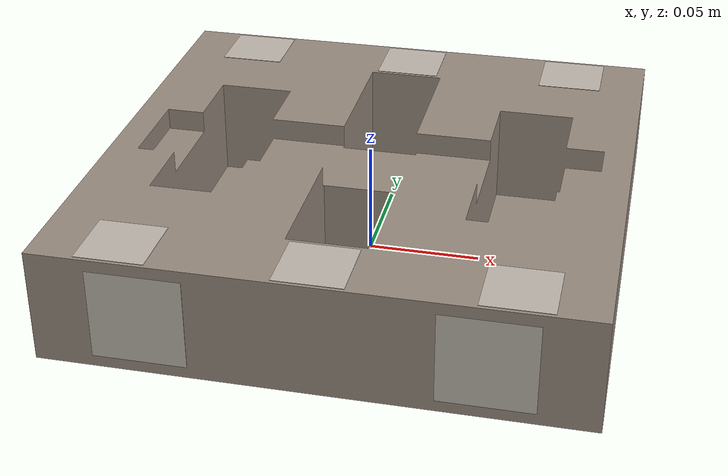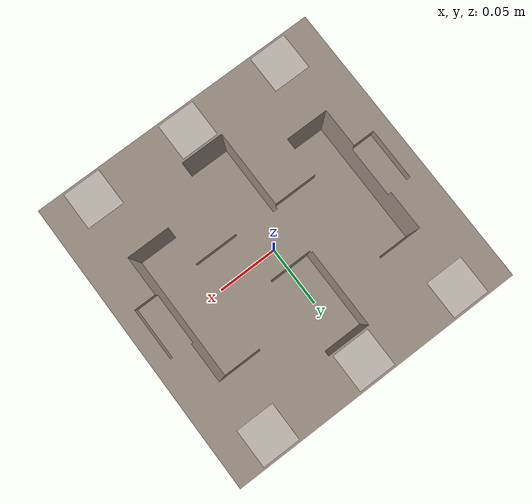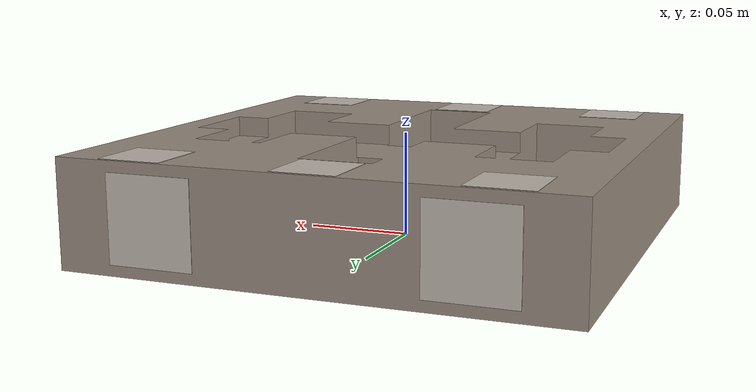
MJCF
<mujoco model="board_v1">
  <compiler angle="radian" meshdir="../assets/board_1" autolimits="true" texturedir="tags" />
  <default>
    <default class="board_v1">
      <default class="vis">
        <geom contype="0" conaffinity="0" group="2" density="0" material="board_v1_mat" />
      </default>
      <default class="col">
        <geom contype="1" conaffinity="1" group="3" priority="0" friction="0.3 0.02 0.001" solref="0.002 1" solimp="0.995 0.995 0.0001" condim="6" rgba="0.8 0.3 0.3 0.5" />
      </default>
    </default>
  </default>
  <asset>
    <material name="board_v1_mat" rgba="0.6 0.55 0.5 1.0" />
    <mesh name="board_v1_vis" file="board_v1.stl" scale="0.001 0.001 0.001" />
    <texture name="board_tag_0_tex" type="2d" file="tag_0.png" />
    <material name="board_tag_0_mat" texture="board_tag_0_tex" rgba="1 1 1 1" specular="0" shininess="0" reflectance="0" emission="0" />
    <mesh name="board_tag_0_mesh" vertex="-0.0146667 0.0146667 0 0.0146667 0.0146667 0 0.0146667 -0.0146667 0 -0.0146667 -0.0146667 0 -0.0146667 0.0146667 -0.0005 0.0146667 0.0146667 -0.0005 0.0146667 -0.0146667 -0.0005 -0.0146667 -0.0146667 -0.0005" texcoord="0 0 1 0 1 1 0 1 0 0 1 0 1 1 0 1" face="0 2 1 0 3 2 7 5 6 7 4 5 0 5 4 0 1 5 1 6 5 1 2 6 2 7 6 2 3 7 3 4 7 3 0 4" />
    <texture name="board_tag_1_tex" type="2d" file="tag_1.png" />
    <material name="board_tag_1_mat" texture="board_tag_1_tex" rgba="1 1 1 1" specular="0" shininess="0" reflectance="0" emission="0" />
    <mesh name="board_tag_1_mesh" vertex="-0.0146667 0.0146667 0 0.0146667 0.0146667 0 0.0146667 -0.0146667 0 -0.0146667 -0.0146667 0 -0.0146667 0.0146667 -0.0005 0.0146667 0.0146667 -0.0005 0.0146667 -0.0146667 -0.0005 -0.0146667 -0.0146667 -0.0005" texcoord="0 0 1 0 1 1 0 1 0 0 1 0 1 1 0 1" face="0 2 1 0 3 2 7 5 6 7 4 5 0 5 4 0 1 5 1 6 5 1 2 6 2 7 6 2 3 7 3 4 7 3 0 4" />
    <texture name="board_tag_2_tex" type="2d" file="tag_2.png" />
    <material name="board_tag_2_mat" texture="board_tag_2_tex" rgba="1 1 1 1" specular="0" shininess="0" reflectance="0" emission="0" />
    <mesh name="board_tag_2_mesh" vertex="-0.0146667 0.0146667 0 0.0146667 0.0146667 0 0.0146667 -0.0146667 0 -0.0146667 -0.0146667 0 -0.0146667 0.0146667 -0.0005 0.0146667 0.0146667 -0.0005 0.0146667 -0.0146667 -0.0005 -0.0146667 -0.0146667 -0.0005" texcoord="0 0 1 0 1 1 0 1 0 0 1 0 1 1 0 1" face="0 2 1 0 3 2 7 5 6 7 4 5 0 5 4 0 1 5 1 6 5 1 2 6 2 7 6 2 3 7 3 4 7 3 0 4" />
    <texture name="board_tag_3_tex" type="2d" file="tag_3.png" />
    <material name="board_tag_3_mat" texture="board_tag_3_tex" rgba="1 1 1 1" specular="0" shininess="0" reflectance="0" emission="0" />
    <mesh name="board_tag_3_mesh" vertex="-0.0146667 0.0146667 0 0.0146667 0.0146667 0 0.0146667 -0.0146667 0 -0.0146667 -0.0146667 0 -0.0146667 0.0146667 -0.0005 0.0146667 0.0146667 -0.0005 0.0146667 -0.0146667 -0.0005 -0.0146667 -0.0146667 -0.0005" texcoord="0 0 1 0 1 1 0 1 0 0 1 0 1 1 0 1" face="0 2 1 0 3 2 7 5 6 7 4 5 0 5 4 0 1 5 1 6 5 1 2 6 2 7 6 2 3 7 3 4 7 3 0 4" />
    <texture name="board_tag_4_tex" type="2d" file="tag_4.png" />
    <material name="board_tag_4_mat" texture="board_tag_4_tex" rgba="1 1 1 1" specular="0" shininess="0" reflectance="0" emission="0" />
    <mesh name="board_tag_4_mesh" vertex="-0.0146667 0.0146667 0 0.0146667 0.0146667 0 0.0146667 -0.0146667 0 -0.0146667 -0.0146667 0 -0.0146667 0.0146667 -0.0005 0.0146667 0.0146667 -0.0005 0.0146667 -0.0146667 -0.0005 -0.0146667 -0.0146667 -0.0005" texcoord="0 0 1 0 1 1 0 1 0 0 1 0 1 1 0 1" face="0 2 1 0 3 2 7 5 6 7 4 5 0 5 4 0 1 5 1 6 5 1 2 6 2 7 6 2 3 7 3 4 7 3 0 4" />
    <texture name="board_tag_5_tex" type="2d" file="tag_5.png" />
    <material name="board_tag_5_mat" texture="board_tag_5_tex" rgba="1 1 1 1" specular="0" shininess="0" reflectance="0" emission="0" />
    <mesh name="board_tag_5_mesh" vertex="-0.0146667 0.0146667 0 0.0146667 0.0146667 0 0.0146667 -0.0146667 0 -0.0146667 -0.0146667 0 -0.0146667 0.0146667 -0.0005 0.0146667 0.0146667 -0.0005 0.0146667 -0.0146667 -0.0005 -0.0146667 -0.0146667 -0.0005" texcoord="0 0 1 0 1 1 0 1 0 0 1 0 1 1 0 1" face="0 2 1 0 3 2 7 5 6 7 4 5 0 5 4 0 1 5 1 6 5 1 2 6 2 7 6 2 3 7 3 4 7 3 0 4" />
    <texture name="board_tag_6_tex" type="2d" file="tag_6.png" />
    <material name="board_tag_6_mat" texture="board_tag_6_tex" rgba="1 1 1 1" specular="0" shininess="0" reflectance="0" emission="0" />
    <mesh name="board_tag_6_mesh" vertex="-0.02 0.02 0 0.02 0.02 0 0.02 -0.02 0 -0.02 -0.02 0 -0.02 0.02 -0.0005 0.02 0.02 -0.0005 0.02 -0.02 -0.0005 -0.02 -0.02 -0.0005" texcoord="0 0 1 0 1 1 0 1 0 0 1 0 1 1 0 1" face="0 2 1 0 3 2 7 5 6 7 4 5 0 5 4 0 1 5 1 6 5 1 2 6 2 7 6 2 3 7 3 4 7 3 0 4" />
    <texture name="board_tag_7_tex" type="2d" file="tag_7.png" />
    <material name="board_tag_7_mat" texture="board_tag_7_tex" rgba="1 1 1 1" specular="0" shininess="0" reflectance="0" emission="0" />
    <mesh name="board_tag_7_mesh" vertex="-0.02 0.02 0 0.02 0.02 0 0.02 -0.02 0 -0.02 -0.02 0 -0.02 0.02 -0.0005 0.02 0.02 -0.0005 0.02 -0.02 -0.0005 -0.02 -0.02 -0.0005" texcoord="0 0 1 0 1 1 0 1 0 0 1 0 1 1 0 1" face="0 2 1 0 3 2 7 5 6 7 4 5 0 5 4 0 1 5 1 6 5 1 2 6 2 7 6 2 3 7 3 4 7 3 0 4" />
    <texture name="board_tag_8_tex" type="2d" file="tag_8.png" />
    <material name="board_tag_8_mat" texture="board_tag_8_tex" rgba="1 1 1 1" specular="0" shininess="0" reflectance="0" emission="0" />
    <mesh name="board_tag_8_mesh" vertex="-0.02 0.02 0 0.02 0.02 0 0.02 -0.02 0 -0.02 -0.02 0 -0.02 0.02 -0.0005 0.02 0.02 -0.0005 0.02 -0.02 -0.0005 -0.02 -0.02 -0.0005" texcoord="0 0 1 0 1 1 0 1 0 0 1 0 1 1 0 1" face="0 2 1 0 3 2 7 5 6 7 4 5 0 5 4 0 1 5 1 6 5 1 2 6 2 7 6 2 3 7 3 4 7 3 0 4" />
    <texture name="board_tag_9_tex" type="2d" file="tag_9.png" />
    <material name="board_tag_9_mat" texture="board_tag_9_tex" rgba="1 1 1 1" specular="0" shininess="0" reflectance="0" emission="0" />
    <mesh name="board_tag_9_mesh" vertex="-0.02 0.02 0 0.02 0.02 0 0.02 -0.02 0 -0.02 -0.02 0 -0.02 0.02 -0.0005 0.02 0.02 -0.0005 0.02 -0.02 -0.0005 -0.02 -0.02 -0.0005" texcoord="0 0 1 0 1 1 0 1 0 0 1 0 1 1 0 1" face="0 2 1 0 3 2 7 5 6 7 4 5 0 5 4 0 1 5 1 6 5 1 2 6 2 7 6 2 3 7 3 4 7 3 0 4" />
  </asset>
  <worldbody>
    <body name="board_v1" pos="0 0 0" childclass="board_v1">
      <inertial pos="0 0 0" mass="1.0" diaginertia="1 1 1" />
      <geom type="mesh" mesh="board_v1_vis" class="vis" pos="-0.115 -0.115 0" />
      <geom name="board_v1_col0" type="box" pos="0.00000 0.00000 0.00250" size="0.11500 0.11500 0.00250" class="col" />
      <geom name="board_v1_col1" type="box" pos="0.00000 -0.09875 0.02250" size="0.11500 0.01625 0.01750" class="col" />
      <geom name="board_v1_col2" type="box" pos="-0.06600 -0.06725 0.02250" size="0.04900 0.01525 0.01750" class="col" />
      <geom name="board_v1_col3" type="box" pos="0.06600 -0.06725 0.02250" size="0.04900 0.01525 0.01750" class="col" />
      <geom name="board_v1_col4" type="box" pos="-0.10000 -0.03525 0.02250" size="0.01500 0.01675 0.01750" class="col" />
      <geom name="board_v1_col5" type="box" pos="-0.03400 -0.03525 0.02250" size="0.01700 0.01675 0.01750" class="col" />
      <geom name="board_v1_col6" type="box" pos="0.03400 -0.03525 0.02250" size="0.01700 0.01675 0.01750" class="col" />
      <geom name="board_v1_col7" type="box" pos="0.10000 -0.03525 0.02250" size="0.01500 0.01675 0.01750" class="col" />
      <geom name="board_v1_col8" type="box" pos="-0.10000 0.00000 0.02250" size="0.01500 0.01850 0.01750" class="col" />
      <geom name="board_v1_col9" type="box" pos="0.00000 0.00000 0.02250" size="0.05100 0.01850 0.01750" class="col" />
      <geom name="board_v1_col10" type="box" pos="0.10000 0.00000 0.02250" size="0.01500 0.01850 0.01750" class="col" />
      <geom name="board_v1_col11" type="box" pos="-0.10000 0.03525 0.02250" size="0.01500 0.01675 0.01750" class="col" />
      <geom name="board_v1_col12" type="box" pos="-0.03400 0.03525 0.02250" size="0.01700 0.01675 0.01750" class="col" />
      <geom name="board_v1_col13" type="box" pos="0.03400 0.03525 0.02250" size="0.01700 0.01675 0.01750" class="col" />
      <geom name="board_v1_col14" type="box" pos="0.10000 0.03525 0.02250" size="0.01500 0.01675 0.01750" class="col" />
      <geom name="board_v1_col15" type="box" pos="-0.06600 0.06725 0.02250" size="0.04900 0.01525 0.01750" class="col" />
      <geom name="board_v1_col16" type="box" pos="0.06600 0.06725 0.02250" size="0.04900 0.01525 0.01750" class="col" />
      <geom name="board_v1_col17" type="box" pos="0.00000 0.09875 0.02250" size="0.11500 0.01625 0.01750" class="col" />
      <geom name="board_v1_col18" type="box" pos="0.00000 -0.09875 0.04500" size="0.11500 0.01625 0.00500" class="col" />
      <geom name="board_v1_col19" type="box" pos="-0.10850 0.00000 0.04500" size="0.00650 0.08250 0.00500" class="col" />
      <geom name="board_v1_col20" type="box" pos="0.10850 0.00000 0.04500" size="0.00650 0.08250 0.00500" class="col" />
      <geom name="board_v1_col21" type="box" pos="0.00000 0.09875 0.04500" size="0.11500 0.01625 0.00500" class="col" />
      <geom name="board_v1_col22" type="box" pos="0.03400 0.05150 0.02500" size="0.01700 0.03100 0.02500" class="col" />
      <geom name="board_v1_col23" type="box" pos="0.09350 0.05150 0.02500" size="0.00850 0.03100 0.02500" class="col" />
      <geom name="board_v1_col24" type="box" pos="0.06800 0.06725 0.02500" size="0.01700 0.01525 0.02500" class="col" />
      <geom name="board_v1_col25" type="box" pos="-0.03400 -0.05150 0.02500" size="0.01700 0.03100 0.02500" class="col" />
      <geom name="board_v1_col26" type="box" pos="-0.09350 -0.05150 0.02500" size="0.00850 0.03100 0.02500" class="col" />
      <geom name="board_v1_col27" type="box" pos="-0.06800 -0.06725 0.02500" size="0.01700 0.01525 0.02500" class="col" />
      <geom name="board_v1_col28" type="box" pos="0.03400 -0.05150 0.02500" size="0.01700 0.03100 0.02500" class="col" />
      <geom name="board_v1_col29" type="box" pos="0.09350 -0.05150 0.02500" size="0.00850 0.03100 0.02500" class="col" />
      <geom name="board_v1_col30" type="box" pos="0.06800 -0.06725 0.02500" size="0.01700 0.01525 0.02500" class="col" />
      <geom name="board_v1_col31" type="box" pos="-0.03400 0.05150 0.02500" size="0.01700 0.03100 0.02500" class="col" />
      <geom name="board_v1_col32" type="box" pos="-0.09350 0.05150 0.02500" size="0.00850 0.03100 0.02500" class="col" />
      <geom name="board_v1_col33" type="box" pos="-0.06800 0.06725 0.02500" size="0.01700 0.01525 0.02500" class="col" />
      <geom name="board_tag_0" type="mesh" mesh="board_tag_0_mesh" material="board_tag_0_mat" pos="-0.08 -0.09875 0.0502" quat="1 0 0 0" contype="0" conaffinity="0" group="2" density="0" />
      <geom name="board_tag_1" type="mesh" mesh="board_tag_1_mesh" material="board_tag_1_mat" pos="0 -0.09875 0.0502" quat="1 0 0 0" contype="0" conaffinity="0" group="2" density="0" />
      <geom name="board_tag_2" type="mesh" mesh="board_tag_2_mesh" material="board_tag_2_mat" pos="0.08 -0.09875 0.0502" quat="1 0 0 0" contype="0" conaffinity="0" group="2" density="0" />
      <geom name="board_tag_3" type="mesh" mesh="board_tag_3_mesh" material="board_tag_3_mat" pos="-0.08 0.09875 0.0502" quat="1 0 0 0" contype="0" conaffinity="0" group="2" density="0" />
      <geom name="board_tag_4" type="mesh" mesh="board_tag_4_mesh" material="board_tag_4_mat" pos="0 0.09875 0.0502" quat="1 0 0 0" contype="0" conaffinity="0" group="2" density="0" />
      <geom name="board_tag_5" type="mesh" mesh="board_tag_5_mesh" material="board_tag_5_mat" pos="0.08 0.09875 0.0502" quat="1 0 0 0" contype="0" conaffinity="0" group="2" density="0" />
      <geom name="board_tag_6" type="mesh" mesh="board_tag_6_mesh" material="board_tag_6_mat" pos="-0.07 -0.1152 0.025" quat="0.707107 0.707107 0 0" contype="0" conaffinity="0" group="2" density="0" />
      <geom name="board_tag_7" type="mesh" mesh="board_tag_7_mesh" material="board_tag_7_mat" pos="0.07 -0.1152 0.025" quat="0.707107 0.707107 0 0" contype="0" conaffinity="0" group="2" density="0" />
      <geom name="board_tag_8" type="mesh" mesh="board_tag_8_mesh" material="board_tag_8_mat" pos="-0.07 0.1152 0.025" quat="0 0 0.707107 0.707107" contype="0" conaffinity="0" group="2" density="0" />
      <geom name="board_tag_9" type="mesh" mesh="board_tag_9_mesh" material="board_tag_9_mat" pos="0.07 0.1152 0.025" quat="0 0 0.707107 0.707107" contype="0" conaffinity="0" group="2" density="0" />
    </body>
  </worldbody>
</mujoco>
